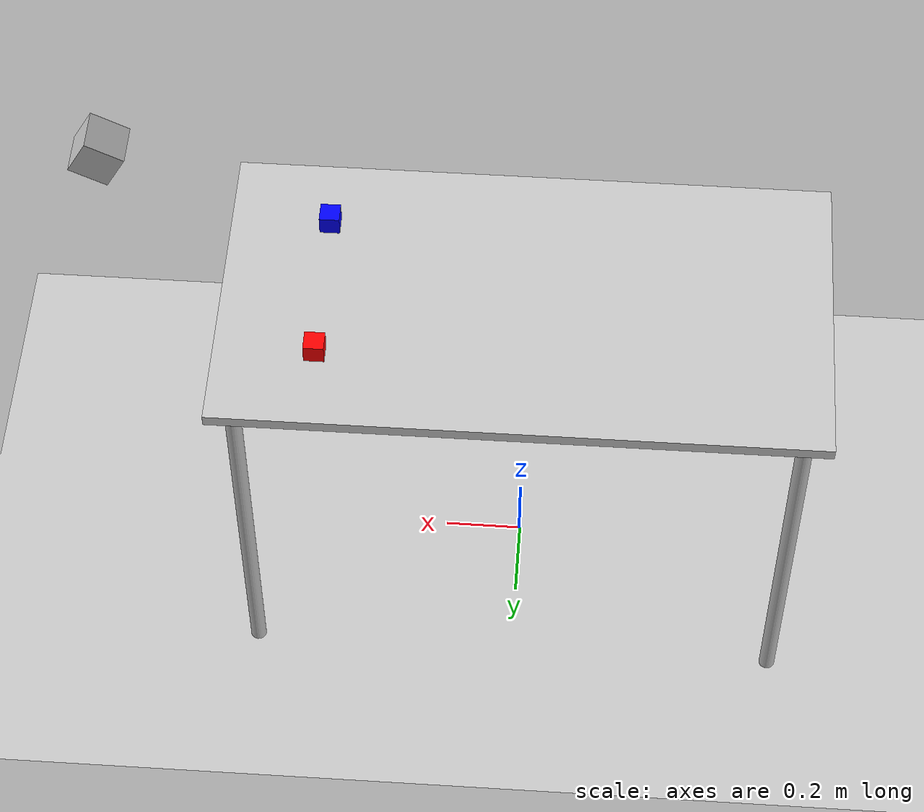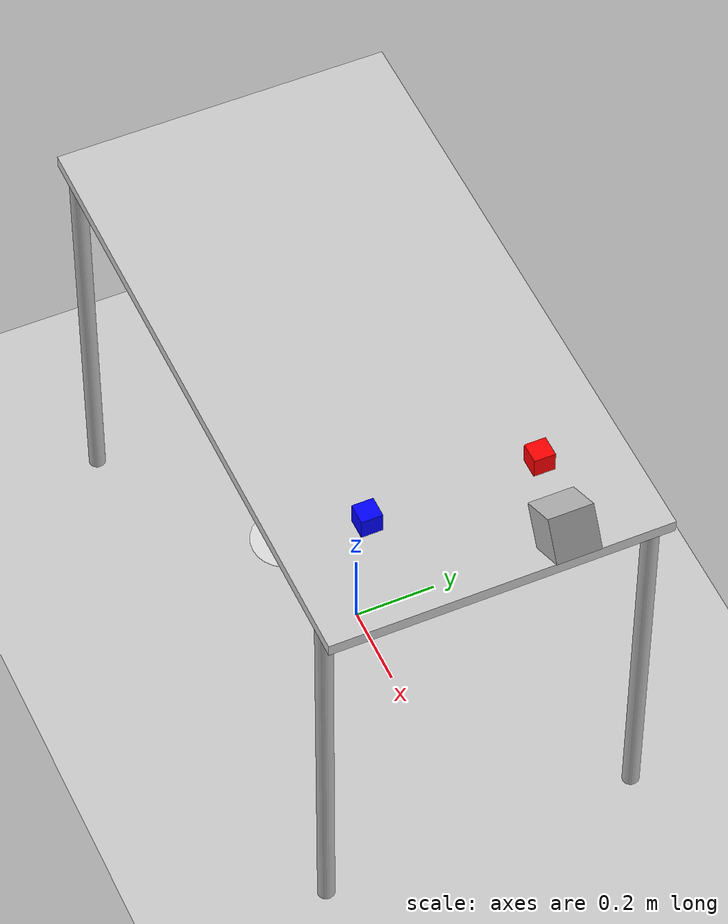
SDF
<?xml version="1.0" ?>
<sdf version="1.6">
  <world name="franka_world">

    <!-- Physics settings optimized for RL training -->
    <physics name="ode_physics" default="true" type="ode">
      <max_step_size>0.001</max_step_size>
      <real_time_factor>1.0</real_time_factor>
      <real_time_update_rate>1000</real_time_update_rate>
      <max_contacts>20</max_contacts>
      <ode>
        <solver>
          <type>quick</type>
          <iters>50</iters>
          <precon_iters>0</precon_iters>
          <sor>1.3</sor>
          <use_dynamic_moi_rescaling>false</use_dynamic_moi_rescaling>
        </solver>
        <constraints>
          <cfm>0.0</cfm>
          <erp>0.2</erp>
          <contact_max_correcting_vel>2000.0</contact_max_correcting_vel>
          <contact_surface_layer>0.01000</contact_surface_layer>
        </constraints>
      </ode>
    </physics>

    <!-- Gravity -->
    <gravity>0 0 -9.81</gravity>
    <magnetic_field>6.0e-6 2.3e-5 -4.2e-5</magnetic_field>

    <!-- Global light source -->
    <include>
      <uri>model://sun</uri>
    </include>

    <!-- Ground plane -->
    <include>
      <uri>model://ground_plane</uri>
    </include>

    <!-- Table for manipulation tasks -->
    <model name="table">
      <static>true</static>
      <link name="link">
        <collision name="surface">
          <geometry>
            <box>
              <size>1.5 0.8 0.03</size>
            </box>
          </geometry>
        </collision>
        <visual name="visual">
          <geometry>
            <box>
              <size>1.5 0.8 0.03</size>
            </box>
          </geometry>
          <material>
            <ambient>0.5 0.5 0.5 1.0</ambient>
            <diffuse>0.8 0.8 0.8 1.0</diffuse>
          </material>
        </visual>
        <collision name="front_left_leg">
          <pose>0.68 0.38 -0.5 0 0 0</pose>
          <geometry>
            <cylinder>
              <radius>0.02</radius>
              <length>1.0</length>
            </cylinder>
          </geometry>
        </collision>
        <visual name="front_left_leg">
          <pose>0.68 0.38 -0.5 0 0 0</pose>
          <geometry>
            <cylinder>
              <radius>0.02</radius>
              <length>1.0</length>
            </cylinder>
          </geometry>
        </visual>
        <collision name="front_right_leg">
          <pose>0.68 -0.38 -0.5 0 0 0</pose>
          <geometry>
            <cylinder>
              <radius>0.02</radius>
              <length>1.0</length>
            </cylinder>
          </geometry>
        </collision>
        <visual name="front_right_leg">
          <pose>0.68 -0.38 -0.5 0 0 0</pose>
          <geometry>
            <cylinder>
              <radius>0.02</radius>
              <length>1.0</length>
            </cylinder>
          </geometry>
        </visual>
        <collision name="back_left_leg">
          <pose>-0.68 0.38 -0.5 0 0 0</pose>
          <geometry>
            <cylinder>
              <radius>0.02</radius>
              <length>1.0</length>
            </cylinder>
          </geometry>
        </collision>
        <visual name="back_left_leg">
          <pose>-0.68 0.38 -0.5 0 0 0</pose>
          <geometry>
            <cylinder>
              <radius>0.02</radius>
              <length>1.0</length>
            </cylinder>
          </geometry>
        </visual>
        <collision name="back_right_leg">
          <pose>-0.68 -0.38 -0.5 0 0 0</pose>
          <geometry>
            <cylinder>
              <radius>0.02</radius>
              <length>1.0</length>
            </cylinder>
          </geometry>
        </collision>
        <visual name="back_right_leg">
          <pose>-0.68 -0.38 -0.5 0 0 0</pose>
          <geometry>
            <cylinder>
              <radius>0.02</radius>
              <length>1.0</length>
            </cylinder>
          </geometry>
        </visual>
      </link>
      <pose>0 0 1.0 0 0 0</pose>
    </model>

    <!-- Manipulation objects -->
    <model name="cube_red">
      <pose>0.5 0.2 1.05 0 0 0</pose>
      <link name="link">
        <inertial>
          <mass>0.1</mass>
          <inertia>
            <ixx>0.000167</ixx>
            <ixy>0</ixy>
            <ixz>0</ixz>
            <iyy>0.000167</iyy>
            <iyz>0</iyz>
            <izz>0.000167</izz>
          </inertia>
        </inertial>
        <collision name="collision">
          <geometry>
            <box>
              <size>0.05 0.05 0.05</size>
            </box>
          </geometry>
        </collision>
        <visual name="visual">
          <geometry>
            <box>
              <size>0.05 0.05 0.05</size>
            </box>
          </geometry>
          <material>
            <ambient>1 0 0 1</ambient>
            <diffuse>1 0 0 1</diffuse>
          </material>
        </visual>
      </link>
    </model>

    <model name="cube_blue">
      <pose>0.5 -0.2 1.05 0 0 0</pose>
      <link name="link">
        <inertial>
          <mass>0.1</mass>
          <inertia>
            <ixx>0.000167</ixx>
            <ixy>0</ixy>
            <ixz>0</ixz>
            <iyy>0.000167</iyy>
            <iyz>0</iyz>
            <izz>0.000167</izz>
          </inertia>
        </inertial>
        <collision name="collision">
          <geometry>
            <box>
              <size>0.05 0.05 0.05</size>
            </box>
          </geometry>
        </collision>
        <visual name="visual">
          <geometry>
            <box>
              <size>0.05 0.05 0.05</size>
            </box>
          </geometry>
          <material>
            <ambient>0 0 1 1</ambient>
            <diffuse>0 0 1 1</diffuse>
          </material>
        </visual>
      </link>
    </model>

    <!-- Camera for perception -->
    <model name="camera">
      <static>true</static>
      <pose>1.0 0 1.5 0 0.5 3.14159</pose>
      <link name="link">
        <visual name="visual">
          <geometry>
            <box>
              <size>0.1 0.1 0.1</size>
            </box>
          </geometry>
        </visual>
        <sensor name="camera" type="camera">
          <camera>
            <horizontal_fov>1.047</horizontal_fov>
            <image>
              <width>640</width>
              <height>480</height>
            </image>
            <clip>
              <near>0.1</near>
              <far>100</far>
            </clip>
          </camera>
          <always_on>1</always_on>
          <update_rate>30</update_rate>
          <visualize>true</visualize>
          <plugin name="camera_controller" filename="libgazebo_ros_camera.so">
            <ros>
              <namespace>camera</namespace>
            </ros>
            <camera_name>rgb_camera</camera_name>
            <frame_name>camera_link</frame_name>
            <hack_baseline>0.07</hack_baseline>
          </plugin>
        </sensor>
      </link>
    </model>

    <!-- Additional Cube Objects for Enhanced Pick&Place Tasks -->
    <model name="cube_green">
      <pose>0.4 -0.1 0.805 0 0 0</pose>
      <static>false</static>
      <link name="link">
        <inertial>
          <mass>0.08</mass>
          <inertia>
            <ixx>2.13e-5</ixx>
            <ixy>0</ixy>
            <ixz>0</ixz>
            <iyy>2.13e-5</iyy>
            <iyz>0</iyz>
            <izz>2.13e-5</izz>
          </inertia>
        </inertial>
        <collision name="collision">
          <geometry>
            <box>
              <size>0.04 0.04 0.04</size>
            </box>
          </geometry>
          <surface>
            <friction>
              <ode>
                <mu>0.8</mu>
                <mu2>0.8</mu2>
              </ode>
            </friction>
          </surface>
        </collision>
        <visual name="visual">
          <geometry>
            <box>
              <size>0.04 0.04 0.04</size>
            </box>
          </geometry>
          <material>
            <ambient>0 1 0 1</ambient>
            <diffuse>0 1 0 1</diffuse>
            <specular>0.1 0.1 0.1 1</specular>
          </material>
        </visual>
      </link>
    </model>

    <model name="cube_yellow">
      <pose>0.45 0.15 0.805 0 0 0</pose>
      <static>false</static>
      <link name="link">
        <inertial>
          <mass>0.08</mass>
          <inertia>
            <ixx>2.13e-5</ixx>
            <ixy>0</ixy>
            <ixz>0</ixz>
            <iyy>2.13e-5</iyy>
            <iyz>0</iyz>
            <izz>2.13e-5</izz>
          </inertia>
        </inertial>
        <collision name="collision">
          <geometry>
            <box>
              <size>0.04 0.04 0.04</size>
            </box>
          </geometry>
          <surface>
            <friction>
              <ode>
                <mu>0.8</mu>
                <mu2>0.8</mu2>
              </ode>
            </friction>
          </surface>
        </collision>
        <visual name="visual">
          <geometry>
            <box>
              <size>0.04 0.04 0.04</size>
            </box>
          </geometry>
          <material>
            <ambient>1 1 0 1</ambient>
            <diffuse>1 1 0 1</diffuse>
            <specular>0.1 0.1 0.1 1</specular>
          </material>
        </visual>
      </link>
    </model>

    <!-- Pick&Place Target Zone Marker -->
    <model name="target_zone_marker">
      <pose>0.3 -0.3 0.801 0 0 0</pose>
      <static>true</static>
      <link name="link">
        <visual name="visual">
          <geometry>
            <cylinder>
              <radius>0.08</radius>
              <length>0.002</length>
            </cylinder>
          </geometry>
          <material>
            <ambient>1 1 1 0.5</ambient>
            <diffuse>1 1 1 0.5</diffuse>
            <specular>0.1 0.1 0.1 1</specular>
          </material>
        </visual>
      </link>
    </model>

  </world>
</sdf>
